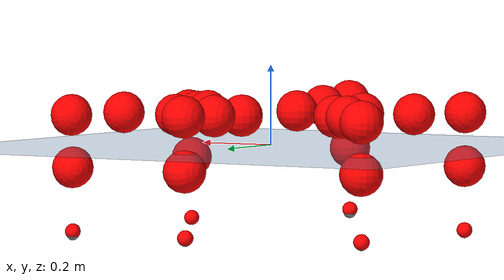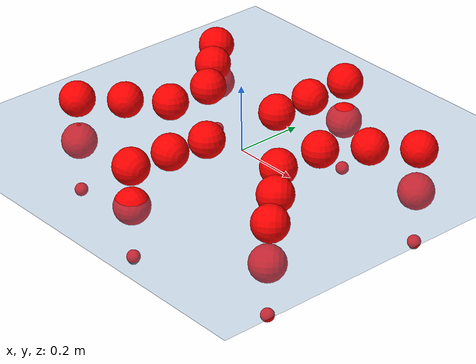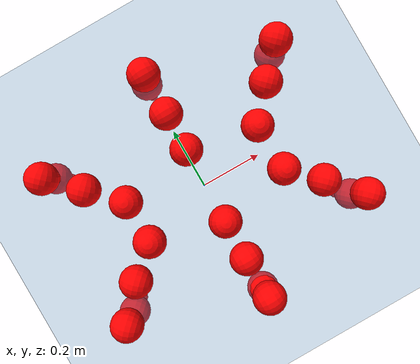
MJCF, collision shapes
<mujoco model="Golem">
  <compiler angle="radian" assetdir="assets" balanceinertia="true" inertiafromgeom="false"/>

  <option timestep="0.005" density="1.2" viscosity="2e-05"/>

  <size nkey="1"/>

  <visual>
    <quality shadowsize="8192"/>
    <map shadowclip="0.5"/>
  </visual>

  <default>
    <default class="/">
      <joint armature="0.01" damping="0.01" frictionloss="0.01"/>
      <geom contype="0" conaffinity="0" group="1" solref="-1000 -80"/>
      <site size="0.01 0.005 0.005" group="5"/>
      <general forcelimited="true" biastype="affine" gainprm="25" biasprm="0 -25 -0.5"/>
      <default class="visual">
        <geom type="mesh" group="2"/>
      </default>
      <default class="collision">
        <geom group="3"/>
      </default>
      <default class="foot">
        <geom size="0.01 0 0" condim="6" group="4" priority="1" solimp="0.015 1 0.01"/>
      </default>
      <default class="reward_collision_sphere">
        <geom group="5" rgba="1 0 0 1"/>
      </default>
    </default>
  </default>

  <asset>
    <texture type="skybox" colorspace="auto" name="//unnamed_texture_0" builtin="gradient" rgb1="0.95 0.95 0.95" rgb2="0.95 0.95 0.95" width="100" height="600"/>
    <texture type="2d" colorspace="auto" name="texplane" builtin="checker" rgb1="0.345 0.575 0.748" rgb2="0.345 0.575 0.748" markrgb="1 1 1" width="512" height="512"/>
    <material name="MatPlane" class="/" texture="texplane" texuniform="true" texrepeat="2 2" specular="0.9"/>
    <mesh name="body" class="/" file="body.stl" scale="0.001 0.001 0.001"/>
    <mesh name="coxa" class="/" file="coxa.stl" scale="0.001 0.001 0.001"/>
    <mesh name="femur" class="/" file="femur.stl" scale="0.001 0.001 0.001"/>
    <mesh name="tibia" class="/" file="tibia.stl" scale="0.001 0.001 0.001"/>
    <mesh name="tarsus" class="/" file="tarsus.stl" scale="0.001 0.001 0.001"/>
  </asset>

  <worldbody>
    <geom name="floor" class="/" size="100 100 0.125" type="plane" group="0" material="MatPlane"/>
    <light name="toplight_shadow" class="/" pos="0 0 5" dir="0.0990148 0.0990148 -0.990148" type="directional" ambient="0.04 0.04 0.04" diffuse="0.55 0.55 0.55" specular="0.12 0.12 0.12"/>
    <light name="toplight_fill" class="/" pos="0 0 5" dir="0.0990148 0.0990148 -0.990148" type="directional" castshadow="false" ambient="0.04 0.04 0.04" diffuse="0.3 0.3 0.3" specular="0.08 0.08 0.08"/>
    <body name="trunk" pos="0.00343768 0.00267917 0.00151293" quat="1 -0.000453953 -3.33013e-05 0.00023945">
      <inertial pos="-0.00326879 0.00189489 0.00802273" quat="0.999897 -0.00841877 -0.0081853 0.00827921" mass="7.72115" diaginertia="0.0731022 0.0309379 0.0190826"/>
      <joint name="//unnamed_joint_0" type="free"/>
      <geom name="//unnamed_geom_1" class="/" pos="0 0 0.0739751" quat="1 0 0 0" type="mesh" rgba="0.9 0.9 0.9 1" mesh="body"/>
      <site name="imu" class="/" pos="0.164948 -0.0170585 0.111414" size="0.0129939"/>
      <camera name="track" class="/" pos="0 -2.50873 0" quat="0.707107 0.707107 0 0" mode="trackcom"/>
      <camera name="ego_camera" class="/" pos="0.193431 0 0.115586" quat="-0.5 -0.5 0.5 0.5"/>
      <body name="coxa_RR" pos="-0.263938 -0.098458 0.0803585" quat="0.382687 -2.99025e-06 -2.37888e-06 -0.923878">
        <inertial pos="-0.000130519 0.00173109 -7.43274e-05" quat="0.999992 0.00297784 0.00218621 0.00166603" mass="0.441679" diaginertia="0.0765964 0.0321683 0.0232984"/>
        <joint name="coxa_joint_RR" class="/" pos="0 0 0" axis="-0.0079677 0.00575852 -0.999952" stiffness="0.0138769" range="-3.14791 3.15629" armature="0.0119151" damping="0.0171836" frictionloss="0.0116688"/>
        <geom name="//unnamed_geom_2" class="/" type="mesh" rgba="0.2 0.2 0.2 1" mesh="coxa"/>
        <geom name="//unnamed_geom_3" class="reward_collision_sphere" size="0.0519754" pos="-0.0446379 0 0"/>
        <body name="femur_RR" pos="0.0834414 -0.00906581 -0.00274813" quat="0.500457 -0.500492 0.499011 0.500038">
          <inertial pos="0.00835308 -0.000623224 0.0094795" quat="0.999056 0.00989934 0.00233976 -0.0422286" mass="0.470215" diaginertia="0.0764015 0.0323715 0.02145"/>
          <joint name="femur_joint_RR" class="/" pos="0 0 0" axis="-0.00792914 0.000571817 -0.999968" range="-3.15223 3.14216" armature="0.0115264" damping="0.00809886" frictionloss="0.0126476"/>
          <geom name="//unnamed_geom_4" class="/" type="mesh" rgba="0.9 0.9 0.9 1" mesh="femur"/>
          <geom name="//unnamed_geom_5" class="reward_collision_sphere" size="0.0519754"/>
          <body name="tibia_RR" pos="-0.00223804 -0.134707 0.00838609" quat="0.000819264 0.999999 0.000673993 0.000732196">
            <inertial pos="0.00102899 -7.12018e-05 0.0062108" quat="0.999915 0.0125465 0.00222708 -0.00283495" mass="0.37965" diaginertia="0.0626367 0.0256658 0.0180633"/>
            <joint name="tibia_joint_RR" class="/" pos="0 0 0" axis="0.0113777 -0.0244258 0.999637" stiffness="0.0143162" range="-3.08383 3.13698" armature="0.0137913" damping="0" frictionloss="0.0161703"/>
            <geom name="//unnamed_geom_6" class="/" type="mesh" rgba="0.2 0.2 0.2 1" mesh="tibia"/>
            <geom name="//unnamed_geom_7" class="reward_collision_sphere" size="0.0519754"/>
            <body name="tarsus_RR" pos="0.134057 -0.00142219 -0.000241502" quat="1 -0.000222348 -0.000511235 0.000101699">
              <inertial pos="0.0911023 0.000359182 0.0017819" quat="0.490035 0.469853 0.527616 0.510613" mass="0.401191" diaginertia="0.0749051 0.0330147 0.0197538"/>
              <joint name="tarsus_joint_RR" class="/" pos="0 0 0" axis="-0.020726 0.0400685 0.998982" range="-3.17752 3.2052" armature="0.0135739" damping="0.0335212" frictionloss="0.0133979"/>
              <geom name="//unnamed_geom_8" class="/" type="mesh" rgba="0.9 0.9 0.9 1" mesh="tarsus"/>
              <geom name="foot_1" class="foot" size="0.0130479" pos="0.166648 0 0" quat="0 -0.707107 0 0.707107"/>
              <geom name="//unnamed_geom_10" class="reward_collision_sphere" size="0.0519754"/>
              <geom name="//unnamed_geom_11" class="reward_collision_sphere" size="0.0194908" pos="0.159953 0 0"/>
              <site name="foot_1" class="foot" pos="0.166648 0 0" quat="0 -0.707107 0 0.707107" size="0.0129939"/>
            </body>
          </body>
        </body>
      </body>
      <body name="coxa_RM" pos="-0.00210287 -0.173726 0.0779735" quat="0.709439 0.00108229 0.00288241 -0.70476">
        <inertial pos="0.00550802 0.00129551 0.00723635" quat="0.999738 -0.01626 -0.00844388 0.013707" mass="0.43617" diaginertia="0.0835971 0.0312016 0.0208527"/>
        <joint name="coxa_joint_RM" class="/" pos="0 0 0" axis="-0.013573 0.00657019 -0.999886" range="-3.16725 3.09941" armature="0.0142302" damping="0.00734476" frictionloss="0.0136618"/>
        <geom name="//unnamed_geom_12" class="/" type="mesh" rgba="0.2 0.2 0.2 1" mesh="coxa"/>
        <geom name="//unnamed_geom_13" class="reward_collision_sphere" size="0.0519754" pos="-0.0446379 0 0"/>
        <body name="femur_RM" pos="0.0826988 -0.00204618 0.00958057" quat="0.49997 -0.501471 0.498445 0.50011">
          <inertial pos="-0.00758985 0.000182585 -0.000276645" quat="0.999147 -0.0269047 -0.0117749 -0.0290153" mass="0.430056" diaginertia="0.0731883 0.0329008 0.0200482"/>
          <joint name="femur_joint_RM" class="/" pos="0 0 0" axis="-0.00954896 0.0257643 -0.999622" stiffness="0.0129936" range="-3.10802 3.13533" armature="0.0128133" damping="0.0118289" frictionloss="0.0116766"/>
          <geom name="//unnamed_geom_14" class="/" type="mesh" rgba="0.9 0.9 0.9 1" mesh="femur"/>
          <geom name="//unnamed_geom_15" class="reward_collision_sphere" size="0.0519754"/>
          <body name="tibia_RM" pos="-0.00803337 -0.134612 0.000173238" quat="1.71938e-05 1 -5.43567e-05 -9.21279e-05">
            <inertial pos="0.0083478 -0.000647449 0.00279558" quat="0.999962 0.00484478 0.00654025 0.00304417" mass="0.429757" diaginertia="0.0690358 0.0330717 0.0229764"/>
            <joint name="tibia_joint_RM" class="/" pos="0 0 0" axis="-0.0177192 0.00202724 0.999841" range="-3.10346 3.15082" armature="0.012955" damping="0.0193412" frictionloss="0.0132815"/>
            <geom name="//unnamed_geom_16" class="/" type="mesh" rgba="0.2 0.2 0.2 1" mesh="tibia"/>
            <geom name="//unnamed_geom_17" class="reward_collision_sphere" size="0.0519754"/>
            <body name="tarsus_RM" pos="0.123344 -0.000679855 0.00169278" quat="0.999999 0.000963425 0.000258141 -0.000196892">
              <inertial pos="0.0884522 -0.000178204 -0.00172143" quat="0.504097 0.496708 0.502257 0.496895" mass="0.45096" diaginertia="0.079025 0.0308909 0.0194886"/>
              <joint name="tarsus_joint_RM" class="/" pos="0 0 0" axis="-0.0227416 0.00720079 0.999715" range="-3.09818 3.12732" armature="0.0134878" damping="0.0166262" frictionloss="0.0143045"/>
              <geom name="//unnamed_geom_18" class="/" type="mesh" rgba="0.9 0.9 0.9 1" mesh="tarsus"/>
              <geom name="foot_2" class="foot" size="0.0163506" pos="0.166648 0 0" quat="0 -0.707107 0 0.707107"/>
              <geom name="//unnamed_geom_20" class="reward_collision_sphere" size="0.0519754"/>
              <geom name="//unnamed_geom_21" class="reward_collision_sphere" size="0.0194908" pos="0.159953 0 0"/>
              <site name="foot_2" class="foot" pos="0.166648 0 0" quat="0 -0.707107 0 0.707107" size="0.0129939"/>
            </body>
          </body>
        </body>
      </body>
      <body name="coxa_RF" pos="0.264183 -0.110489 0.0752945" quat="0.923849 -0.000196738 8.40696e-05 -0.382758">
        <inertial pos="0.00913865 0.00191105 0.00236989" quat="0.999572 -0.0121712 0.0251344 0.00871927" mass="0.380523" diaginertia="0.0698275 0.0336834 0.0205443"/>
        <joint name="coxa_joint_RF" class="/" pos="0 0 0" axis="0.00503013 -0.0113259 -0.999923" range="-3.12066 3.12703" armature="0.0102189" damping="0.0115457" frictionloss="0.0129469"/>
        <geom name="//unnamed_geom_22" class="/" type="mesh" rgba="0.2 0.2 0.2 1" mesh="coxa"/>
        <geom name="//unnamed_geom_23" class="reward_collision_sphere" size="0.0519754" pos="-0.0446379 0 0"/>
        <body name="femur_RF" pos="0.0845606 -0.000529922 -0.0075254" quat="0.499961 -0.499974 0.500067 0.499998">
          <inertial pos="-0.00249201 -0.00826956 -0.00205447" quat="0.999948 0.00478914 0.000892388 0.00896221" mass="0.458101" diaginertia="0.0698266 0.0332198 0.0200828"/>
          <joint name="femur_joint_RF" class="/" pos="0 0 0" axis="0.0148652 -0.00332632 -0.999884" stiffness="0.039138" range="-3.10274 3.21028" armature="0.0129385" damping="0.0031518" frictionloss="0.0124275"/>
          <geom name="//unnamed_geom_24" class="/" type="mesh" rgba="0.9 0.9 0.9 1" mesh="femur"/>
          <geom name="//unnamed_geom_25" class="reward_collision_sphere" size="0.0519754"/>
          <body name="tibia_RF" pos="0.00252083 -0.140733 -0.00559657" quat="-0.000296607 0.999999 -0.000605022 0.00107861">
            <inertial pos="0.00710017 0.0041769 -0.00603269" quat="0.999925 -0.0087288 -0.00364041 0.00783115" mass="0.413788" diaginertia="0.072105 0.0317143 0.0209064"/>
            <joint name="tibia_joint_RF" class="/" pos="0 0 0" axis="0.0063555 -0.00419481 0.999971" range="-3.10571 3.22379" armature="0.0112892" damping="0.0550154" frictionloss="0.0142476"/>
            <geom name="//unnamed_geom_26" class="/" type="mesh" rgba="0.2 0.2 0.2 1" mesh="tibia"/>
            <geom name="//unnamed_geom_27" class="reward_collision_sphere" size="0.0519754"/>
            <body name="tarsus_RF" pos="0.125087 -0.00704645 0.0065066" quat="0.999998 0.00159385 0.000881839 0.000212276">
              <inertial pos="0.0860526 -0.000332939 -0.00226243" quat="0.49626 0.498114 0.503949 0.501641" mass="0.438921" diaginertia="0.0720812 0.027725 0.0220854"/>
              <joint name="tarsus_joint_RF" class="/" pos="0 0 0" axis="-0.000348719 0.00367475 0.999993" stiffness="0.00148445" range="-3.1003 3.13854" armature="0.00968106" damping="0.00268766" frictionloss="0.0070087"/>
              <geom name="//unnamed_geom_28" class="/" type="mesh" rgba="0.9 0.9 0.9 1" mesh="tarsus"/>
              <geom name="foot_3" class="foot" size="0.00930486" pos="0.166648 0 0" quat="0 -0.707107 0 0.707107"/>
              <geom name="//unnamed_geom_30" class="reward_collision_sphere" size="0.0519754"/>
              <geom name="//unnamed_geom_31" class="reward_collision_sphere" size="0.0194908" pos="0.159953 0 0"/>
              <site name="foot_3" class="foot" pos="0.166648 0 0" quat="0 -0.707107 0 0.707107" size="0.0129939"/>
            </body>
          </body>
        </body>
      </body>
      <body name="coxa_LR" pos="-0.266229 0.104539 0.07945" quat="0.38304 0.0016054 0.00311233 0.923725">
        <inertial pos="-0.00170522 0.000993031 0.00872451" quat="0.999698 -0.0136538 -0.0182003 0.00924856" mass="0.528488" diaginertia="0.0815335 0.0351592 0.0236351"/>
        <joint name="coxa_joint_LR" class="/" pos="0 0 0" axis="-0.00199027 0.00337627 -0.999992" range="-3.1483 2.96201" armature="0.00973865" damping="0.0148386" frictionloss="0.0187087"/>
        <geom name="//unnamed_geom_32" class="/" type="mesh" rgba="0.2 0.2 0.2 1" mesh="coxa"/>
        <geom name="//unnamed_geom_33" class="reward_collision_sphere" size="0.0519754" pos="-0.0446379 0 0"/>
        <body name="femur_LR" pos="0.0871837 -0.00299129 0.00528042" quat="0.500598 -0.50018 0.498848 0.500372">
          <inertial pos="-0.00164934 -0.00216545 -0.00162853" quat="0.999925 -0.00774706 -0.00324252 -0.00887642" mass="0.450235" diaginertia="0.0757671 0.0282436 0.0217598"/>
          <joint name="femur_joint_LR" class="/" pos="0 0 0" axis="0.00108073 0.000252011 0.999999" stiffness="0.0177451" range="-3.09601 3.23626" armature="0.0107806" damping="0.0113076" frictionloss="0.0127174"/>
          <geom name="//unnamed_geom_34" class="/" type="mesh" rgba="0.9 0.9 0.9 1" mesh="femur"/>
          <geom name="//unnamed_geom_35" class="reward_collision_sphere" size="0.0519754"/>
          <body name="tibia_LR" pos="0.00567238 -0.134658 0.000280978" quat="0.000479224 0.999997 -0.000409018 -0.00238544">
            <inertial pos="-0.00319376 -0.00783445 0.000616237" quat="0.999659 -0.0200475 0.0118118 -0.0118262" mass="0.450748" diaginertia="0.0630395 0.0282026 0.0223609"/>
            <joint name="tibia_joint_LR" class="/" pos="0 0 0" axis="0.00942382 -0.0106175 -0.999899" range="-3.15502 3.14" armature="0.013108" damping="0" frictionloss="0.011452"/>
            <geom name="//unnamed_geom_36" class="/" type="mesh" rgba="0.2 0.2 0.2 1" mesh="tibia"/>
            <geom name="//unnamed_geom_37" class="reward_collision_sphere" size="0.0519754"/>
            <body name="tarsus_LR" pos="0.124065 0.00106611 0.0016349" quat="1 0.000396148 0.000397942 8.02529e-06">
              <inertial pos="0.0908303 0.00318502 3.23988e-06" quat="0.496219 0.499038 0.505458 0.499241" mass="0.480236" diaginertia="0.0800349 0.0351559 0.0231923"/>
              <joint name="tarsus_joint_LR" class="/" pos="0 0 0" axis="0.000620256 -0.00664169 -0.999978" range="-3.17335 3.11334" armature="0.019095" damping="0.0385861" frictionloss="0.0130675"/>
              <geom name="//unnamed_geom_38" class="/" type="mesh" rgba="0.9 0.9 0.9 1" mesh="tarsus"/>
              <geom name="foot_4" class="foot" size="0.0136809" pos="0.166648 0 0" quat="0.707107 0 -0.707107 0"/>
              <geom name="//unnamed_geom_40" class="reward_collision_sphere" size="0.0519754"/>
              <geom name="//unnamed_geom_41" class="reward_collision_sphere" size="0.0194908" pos="0.159953 0 0"/>
              <site name="foot_4" class="foot" pos="0.166648 0 0" quat="0.707107 0 -0.707107 0" size="0.0129939"/>
            </body>
          </body>
        </body>
      </body>
      <body name="coxa_LM" pos="0.00391415 0.165035 0.0772781" quat="0.705997 0.00340566 0.00328115 0.708199">
        <inertial pos="-0.00581074 0.00683387 0.00272714" quat="0.999598 0.000705398 0.0256565 0.0120611" mass="0.430442" diaginertia="0.0758244 0.030973 0.019759"/>
        <joint name="coxa_joint_LM" class="/" pos="0 0 0" axis="0.000768766 0.00639188 -0.999979" range="-3.16498 3.15164" armature="0.00728619" damping="0.0165565" frictionloss="0.0131144"/>
        <geom name="//unnamed_geom_42" class="/" type="mesh" rgba="0.2 0.2 0.2 1" mesh="coxa"/>
        <geom name="//unnamed_geom_43" class="reward_collision_sphere" size="0.0519754" pos="-0.0446379 0 0"/>
        <body name="femur_LM" pos="0.0795505 -0.00162586 0.00449059" quat="0.499595 -0.500438 0.498447 0.501515">
          <inertial pos="0.0054668 0.00028436 0.00694121" quat="0.999912 -0.00604985 1.03678e-05 0.0117882" mass="0.381887" diaginertia="0.0681582 0.0302124 0.0195408"/>
          <joint name="femur_joint_LM" class="/" pos="0 0 0" axis="-0.00878233 -0.0107757 0.999903" range="-3.20287 3.15207" armature="0.0106577" damping="0.0111677" frictionloss="0.0126685"/>
          <geom name="//unnamed_geom_44" class="/" type="mesh" rgba="0.9 0.9 0.9 1" mesh="femur"/>
          <geom name="//unnamed_geom_45" class="reward_collision_sphere" size="0.0519754"/>
          <body name="tibia_LM" pos="-0.0038299 -0.135272 -0.000934246" quat="0.000131083 1 2.38378e-06 5.06956e-05">
            <inertial pos="-0.008444 -0.00905137 -0.00944603" quat="0.999993 0.00192447 -0.00279147 -0.00181464" mass="0.431482" diaginertia="0.0723143 0.0328391 0.0190283"/>
            <joint name="tibia_joint_LM" class="/" pos="0 0 0" axis="-0.0090465 0.00770699 -0.999929" stiffness="0.023661" range="-3.12635 3.15095" armature="0.0105533" damping="0.000390872" frictionloss="0.0161157"/>
            <geom name="//unnamed_geom_46" class="/" type="mesh" rgba="0.2 0.2 0.2 1" mesh="tibia"/>
            <geom name="//unnamed_geom_47" class="reward_collision_sphere" size="0.0519754"/>
            <body name="tarsus_LM" pos="0.131289 0.00608971 -0.00530258" quat="0.999999 0.000217176 0.00139056 0.00100132">
              <inertial pos="0.0888849 -0.000641585 -0.00295122" quat="0.492808 0.498178 0.502683 0.50623" mass="0.391076" diaginertia="0.0713832 0.0242627 0.0186324"/>
              <joint name="tarsus_joint_LM" class="/" pos="0 0 0" axis="-0.00370906 0.026683 -0.999637" range="-2.93574 3.18014" armature="0.0124201" damping="0" frictionloss="0.0128126"/>
              <geom name="//unnamed_geom_48" class="/" type="mesh" rgba="0.9 0.9 0.9 1" mesh="tarsus"/>
              <geom name="foot_5" class="foot" size="0.0135961" pos="0.166648 0 0" quat="0.707107 0 -0.707107 0"/>
              <geom name="//unnamed_geom_50" class="reward_collision_sphere" size="0.0519754"/>
              <geom name="//unnamed_geom_51" class="reward_collision_sphere" size="0.0194908" pos="0.159953 0 0"/>
              <site name="foot_5" class="foot" pos="0.166648 0 0" quat="0.707107 0 -0.707107 0" size="0.0129939"/>
            </body>
          </body>
        </body>
      </body>
      <body name="coxa_LF" pos="0.260921 0.10679 0.071694" quat="0.923251 -0.00264211 -0.0017906 0.384183">
        <inertial pos="0.000726286 -0.00872582 -0.00162211" quat="0.999956 -0.000415249 0.00940219 -0.000604337" mass="0.415814" diaginertia="0.0672492 0.0259186 0.0186017"/>
        <joint name="coxa_joint_LF" class="/" pos="0 0 0" axis="-0.013882 0.00697025 -0.999879" stiffness="0.000225615" range="-3.14094 3.18047" armature="0.00690744" damping="0.0127578" frictionloss="0.0133025"/>
        <geom name="//unnamed_geom_52" class="/" type="mesh" rgba="0.2 0.2 0.2 1" mesh="coxa"/>
        <geom name="//unnamed_geom_53" class="reward_collision_sphere" size="0.0519754" pos="-0.0446379 0 0"/>
        <body name="femur_LF" pos="0.0890349 0.010418 0.00786935" quat="0.497664 -0.500748 0.500694 0.500887">
          <inertial pos="-0.0037173 -0.00163044 -0.0094141" quat="0.999474 -0.0266965 0.00342257 -0.0181025" mass="0.448048" diaginertia="0.075475 0.0271881 0.0200268"/>
          <joint name="femur_joint_LF" class="/" pos="0 0 0" axis="-0.0246126 0.00612253 0.999678" stiffness="0.0301723" range="-3.16031 3.30376" armature="0.0129701" damping="0.0205243" frictionloss="0.0136317"/>
          <geom name="//unnamed_geom_54" class="/" type="mesh" rgba="0.9 0.9 0.9 1" mesh="femur"/>
          <geom name="//unnamed_geom_55" class="reward_collision_sphere" size="0.0519754"/>
          <body name="tibia_LF" pos="0.00452788 -0.133427 0.00283924" quat="0.00269311 0.999994 -0.0013654 -0.00140888">
            <inertial pos="0.00116236 0.00784853 0.00058709" quat="0.999962 0.00397456 -0.00757929 -0.00154388" mass="0.426453" diaginertia="0.0744598 0.0307192 0.0204661"/>
            <joint name="tibia_joint_LF" class="/" pos="0 0 0" axis="-0.0264416 -0.0115073 -0.999584" range="-3.02143 3.17958" armature="0.0109317" damping="0.0169508" frictionloss="0.00829448"/>
            <geom name="//unnamed_geom_56" class="/" type="mesh" rgba="0.2 0.2 0.2 1" mesh="tibia"/>
            <geom name="//unnamed_geom_57" class="reward_collision_sphere" size="0.0519754"/>
            <body name="tarsus_LF" pos="0.130837 -0.00348655 0.000948419" quat="0.999988 0.00456564 -0.0016724 0.000337044">
              <inertial pos="0.0927927 -0.000733196 -0.00139607" quat="0.501443 0.502835 0.504284 0.491335" mass="0.429937" diaginertia="0.0777438 0.0326754 0.0230051"/>
              <joint name="tarsus_joint_LF" class="/" pos="0 0 0" axis="0.0152834 0.0446363 -0.998886" stiffness="0.00522163" range="-3.14414 3.25463" armature="0.0128272" damping="0.0479796" frictionloss="0.0117962"/>
              <geom name="//unnamed_geom_58" class="/" type="mesh" rgba="0.9 0.9 0.9 1" mesh="tarsus"/>
              <geom name="foot_6" class="foot" size="0.0158521" pos="0.166648 0 0" quat="0.707107 0 -0.707107 0"/>
              <geom name="//unnamed_geom_60" class="reward_collision_sphere" size="0.0519754"/>
              <geom name="//unnamed_geom_61" class="reward_collision_sphere" size="0.0194908" pos="0.159953 0 0"/>
              <site name="foot_6" class="foot" pos="0.166648 0 0" quat="0.707107 0 -0.707107 0" size="0.0129939"/>
            </body>
          </body>
        </body>
      </body>
    </body>
  </worldbody>

  <contact>
    <pair class="/" geom1="floor" geom2="foot_1" name="//unnamed_contact_0"/>
    <pair class="/" geom1="floor" geom2="foot_2" name="//unnamed_contact_1"/>
    <pair class="/" geom1="floor" geom2="foot_3" name="//unnamed_contact_2"/>
    <pair class="/" geom1="floor" geom2="foot_4" name="//unnamed_contact_3"/>
    <pair class="/" geom1="floor" geom2="foot_5" name="//unnamed_contact_4"/>
    <pair class="/" geom1="floor" geom2="foot_6" name="//unnamed_contact_5"/>
  </contact>

  <actuator>
    <general name="coxa_joint_RR" class="/" joint="coxa_joint_RR" forcerange="-12.316 12.316" gainprm="30.8398" biasprm="0 -30.8398 -0.693975"/>
    <general name="femur_joint_RR" class="/" joint="femur_joint_RR" forcerange="-8.97378 8.97378" gainprm="30.8398" biasprm="0 -30.8398 -0.693975"/>
    <general name="tibia_joint_RR" class="/" joint="tibia_joint_RR" forcerange="-12.71 12.71" gainprm="30.8398" biasprm="0 -30.8398 -0.693975"/>
    <general name="tarsus_joint_RR" class="/" joint="tarsus_joint_RR" forcerange="-8.68111 8.68111" gainprm="30.8398" biasprm="0 -30.8398 -0.693975"/>
    <general name="coxa_joint_RM" class="/" joint="coxa_joint_RM" forcerange="-9.41392 9.41392" gainprm="30.8398" biasprm="0 -30.8398 -0.693975"/>
    <general name="femur_joint_RM" class="/" joint="femur_joint_RM" forcerange="-9.61125 9.61125" gainprm="30.8398" biasprm="0 -30.8398 -0.693975"/>
    <general name="tibia_joint_RM" class="/" joint="tibia_joint_RM" forcerange="-11.9481 11.9481" gainprm="30.8398" biasprm="0 -30.8398 -0.693975"/>
    <general name="tarsus_joint_RM" class="/" joint="tarsus_joint_RM" forcerange="-6.40625 6.40625" gainprm="30.8398" biasprm="0 -30.8398 -0.693975"/>
    <general name="coxa_joint_RF" class="/" joint="coxa_joint_RF" forcerange="-9.92423 9.92423" gainprm="30.8398" biasprm="0 -30.8398 -0.693975"/>
    <general name="femur_joint_RF" class="/" joint="femur_joint_RF" forcerange="-8.901 8.901" gainprm="30.8398" biasprm="0 -30.8398 -0.693975"/>
    <general name="tibia_joint_RF" class="/" joint="tibia_joint_RF" forcerange="-6.76575 6.76575" gainprm="30.8398" biasprm="0 -30.8398 -0.693975"/>
    <general name="tarsus_joint_RF" class="/" joint="tarsus_joint_RF" forcerange="-9.04706 9.04706" gainprm="30.8398" biasprm="0 -30.8398 -0.693975"/>
    <general name="coxa_joint_LR" class="/" joint="coxa_joint_LR" forcerange="-9.26684 9.26684" gainprm="30.8398" biasprm="0 -30.8398 -0.693975"/>
    <general name="femur_joint_LR" class="/" joint="femur_joint_LR" forcerange="-11.4791 11.4791" gainprm="30.8398" biasprm="0 -30.8398 -0.693975"/>
    <general name="tibia_joint_LR" class="/" joint="tibia_joint_LR" forcerange="-9.89192 9.89192" gainprm="30.8398" biasprm="0 -30.8398 -0.693975"/>
    <general name="tarsus_joint_LR" class="/" joint="tarsus_joint_LR" forcerange="-10.7755 10.7755" gainprm="30.8398" biasprm="0 -30.8398 -0.693975"/>
    <general name="coxa_joint_LM" class="/" joint="coxa_joint_LM" forcerange="-9.8947 9.8947" gainprm="30.8398" biasprm="0 -30.8398 -0.693975"/>
    <general name="femur_joint_LM" class="/" joint="femur_joint_LM" forcerange="-9.27087 9.27087" gainprm="30.8398" biasprm="0 -30.8398 -0.693975"/>
    <general name="tibia_joint_LM" class="/" joint="tibia_joint_LM" forcerange="-11.0547 11.0547" gainprm="30.8398" biasprm="0 -30.8398 -0.693975"/>
    <general name="tarsus_joint_LM" class="/" joint="tarsus_joint_LM" forcerange="-9.01732 9.01732" gainprm="30.8398" biasprm="0 -30.8398 -0.693975"/>
    <general name="coxa_joint_LF" class="/" joint="coxa_joint_LF" forcerange="-9.58489 9.58489" gainprm="30.8398" biasprm="0 -30.8398 -0.693975"/>
    <general name="femur_joint_LF" class="/" joint="femur_joint_LF" forcerange="-9.79913 9.79913" gainprm="30.8398" biasprm="0 -30.8398 -0.693975"/>
    <general name="tibia_joint_LF" class="/" joint="tibia_joint_LF" forcerange="-8.14898 8.14898" gainprm="30.8398" biasprm="0 -30.8398 -0.693975"/>
    <general name="tarsus_joint_LF" class="/" joint="tarsus_joint_LF" forcerange="-9.83755 9.83755" gainprm="30.8398" biasprm="0 -30.8398 -0.693975"/>
  </actuator>

  <sensor>
    <gyro site="imu" name="imu_angular_velocity"/>
    <velocimeter site="imu" name="imu_linear_velocity"/>
    <framelinvel objtype="site" objname="foot_1" name="foot_1_global_linear_velocity"/>
    <framelinvel objtype="site" objname="foot_2" name="foot_2_global_linear_velocity"/>
    <framelinvel objtype="site" objname="foot_3" name="foot_3_global_linear_velocity"/>
    <framelinvel objtype="site" objname="foot_4" name="foot_4_global_linear_velocity"/>
    <framelinvel objtype="site" objname="foot_5" name="foot_5_global_linear_velocity"/>
    <framelinvel objtype="site" objname="foot_6" name="foot_6_global_linear_velocity"/>
  </sensor>

  <keyframe>
    <key name="home" qpos="0 0 0.1457 1 0 0 0 0 0 0 0 0 0 0 0 0 0 0 0 0 0 0 0 0 0 0 0 0 0 0 0"/>
  </keyframe>
</mujoco>
